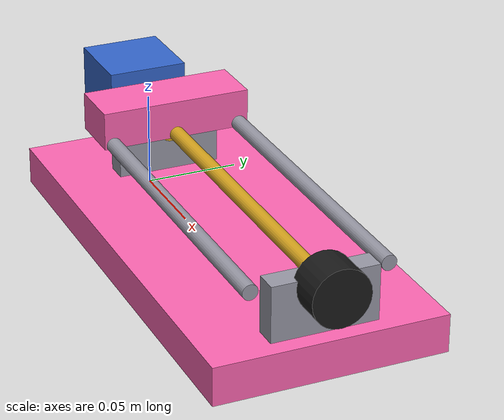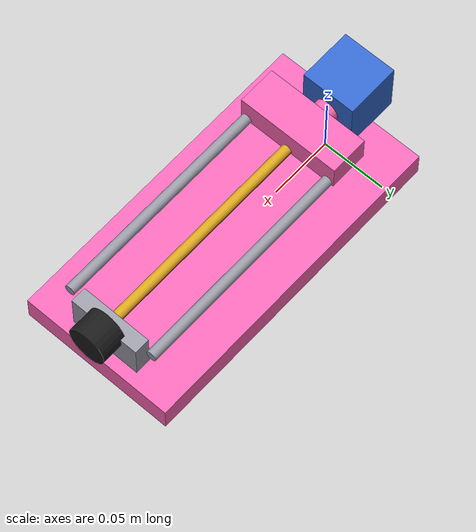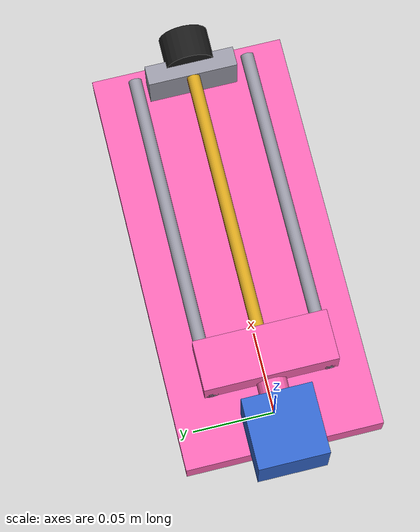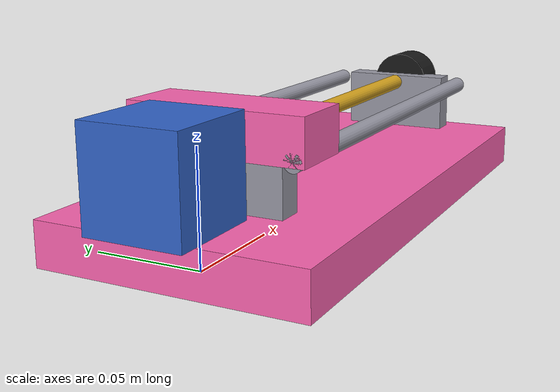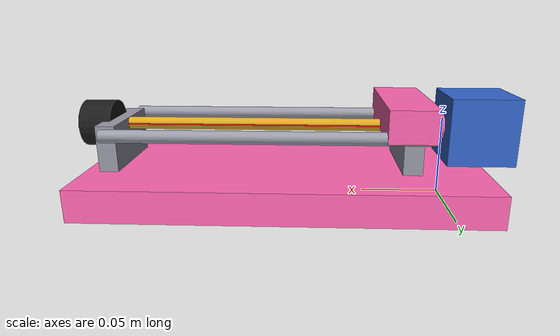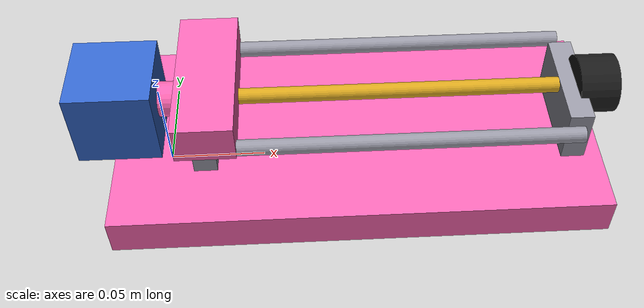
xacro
<?xml version="1.0"?>
<robot name="precision_positioning_table" xmlns:xacro="http://www.ros.org/wiki/xacro">

  <xacro:include filename="$(find precision_positioning_description)/urdf/materials.xacro" />
  <xacro:include filename="$(find precision_positioning_description)/urdf/ros2_control.xacro" />

  <!-- World link -->
  <link name="world"/>

  <joint name="world_to_base" type="fixed">
    <parent link="world"/>
    <child link="base_link"/>
    <origin xyz="0 0 0.02" rpy="0 0 0"/>
  </joint>

  <!-- Base Link (Aluminium Base Plate) -->
  <link name="base_link">
    <visual>
      <origin xyz="0.100 0 -0.01" rpy="0 0 0"/>
      <geometry>
        <box size="0.250 0.120 0.020"/>
      </geometry>
      <material name="aluminium"/>
    </visual>
    <collision>
      <origin xyz="0.100 0 -0.01" rpy="0 0 0"/>
      <geometry>
        <box size="0.250 0.120 0.020"/>
      </geometry>
    </collision>
    <inertial>
      <origin xyz="0.100 0 -0.01" rpy="0 0 0"/>
      <mass value="1.5"/>
      <inertia ixx="0.00185" ixy="0" ixz="0" iyy="0.00786" iyz="0" izz="0.00966"/>
    </inertial>
  </link>

  <!-- NEMA17 Stepper Motor Body -->
  <link name="nema17_motor">
    <visual>
      <origin xyz="-0.021 0 0" rpy="0 1.570796 0"/>
      <geometry>
        <box size="0.042 0.042 0.042"/>
      </geometry>
      <material name="stepper_blue"/>
    </visual>
    <collision>
      <origin xyz="-0.021 0 0" rpy="0 1.570796 0"/>
      <geometry>
        <box size="0.042 0.042 0.042"/>
      </geometry>
    </collision>
    <inertial>
      <origin xyz="-0.021 0 0" rpy="0 0 0"/>
      <mass value="0.35"/>
      <inertia ixx="0.0001" ixy="0" ixz="0" iyy="0.0001" iyz="0" izz="0.0001"/>
    </inertial>
  </link>

  <joint name="motor_joint" type="fixed">
    <parent link="base_link"/>
    <child link="nema17_motor"/>
    <origin xyz="0 0 0.025" rpy="0 0 0"/>
  </joint>

  <!-- Flexible Shaft Coupling -->
  <link name="shaft_coupling">
    <visual>
      <origin xyz="0.010 0 0" rpy="0 1.570796 0"/>
      <geometry>
        <cylinder radius="0.009" length="0.020"/>
      </geometry>
      <material name="aluminium"/>
    </visual>
    <collision>
      <origin xyz="0.010 0 0" rpy="0 1.570796 0"/>
      <geometry>
        <cylinder radius="0.009" length="0.020"/>
      </geometry>
    </collision>
    <inertial>
      <origin xyz="0.010 0 0" rpy="0 0 0"/>
      <mass value="0.03"/>
      <inertia ixx="0.000001" ixy="0" ixz="0" iyy="0.000001" iyz="0" izz="0.000001"/>
    </inertial>
  </link>

  <joint name="coupling_joint" type="fixed">
    <parent link="nema17_motor"/>
    <child link="shaft_coupling"/>
    <origin xyz="0 0 0" rpy="0 0 0"/>
  </joint>

  <!-- KP08 Bearing Block (Motor End) -->
  <link name="kp08_bearing_front">
    <visual>
      <origin xyz="0 0 0" rpy="0 0 0"/>
      <geometry>
        <box size="0.012 0.055 0.029"/>
      </geometry>
      <material name="steel"/>
    </visual>
    <collision>
      <origin xyz="0 0 0" rpy="0 0 0"/>
      <geometry>
        <box size="0.012 0.055 0.029"/>
      </geometry>
    </collision>
    <inertial>
      <mass value="0.08"/>
      <inertia ixx="0.00001" ixy="0" ixz="0" iyy="0.00001" iyz="0" izz="0.00001"/>
    </inertial>
  </link>

  <joint name="kp08_front_joint" type="fixed">
    <parent link="base_link"/>
    <child link="kp08_bearing_front"/>
    <origin xyz="0.022 0 0.0145" rpy="0 0 0"/>
  </joint>

  <!-- KP08 Bearing Block (Far End) -->
  <link name="kp08_bearing_rear">
    <visual>
      <origin xyz="0 0 0" rpy="0 0 0"/>
      <geometry>
        <box size="0.012 0.055 0.029"/>
      </geometry>
      <material name="steel"/>
    </visual>
    <collision>
      <origin xyz="0 0 0" rpy="0 0 0"/>
      <geometry>
        <box size="0.012 0.055 0.029"/>
      </geometry>
    </collision>
    <inertial>
      <mass value="0.08"/>
      <inertia ixx="0.00001" ixy="0" ixz="0" iyy="0.00001" iyz="0" izz="0.00001"/>
    </inertial>
  </link>

  <joint name="kp08_rear_joint" type="fixed">
    <parent link="base_link"/>
    <child link="kp08_bearing_rear"/>
    <origin xyz="0.210 0 0.0145" rpy="0 0 0"/>
  </joint>

  <!-- Two Linear Guide Rods -->
  <link name="guide_rod_1">
    <visual>
      <origin xyz="0.100 0 0" rpy="0 1.570796 0"/>
      <geometry>
        <cylinder radius="0.004" length="0.200"/>
      </geometry>
      <material name="steel"/>
    </visual>
    <collision>
      <origin xyz="0.100 0 0" rpy="0 1.570796 0"/>
      <geometry>
        <cylinder radius="0.004" length="0.200"/>
      </geometry>
    </collision>
    <inertial>
      <mass value="0.08"/>
      <inertia ixx="0.000001" ixy="0" ixz="0" iyy="0.0002" iyz="0" izz="0.0002"/>
    </inertial>
  </link>

  <joint name="guide_rod_1_joint" type="fixed">
    <parent link="base_link"/>
    <child link="guide_rod_1"/>
    <origin xyz="0.010 0.035 0.025" rpy="0 0 0"/>
  </joint>

  <link name="guide_rod_2">
    <visual>
      <origin xyz="0.100 0 0" rpy="0 1.570796 0"/>
      <geometry>
        <cylinder radius="0.004" length="0.200"/>
      </geometry>
      <material name="steel"/>
    </visual>
    <collision>
      <origin xyz="0.100 0 0" rpy="0 1.570796 0"/>
      <geometry>
        <cylinder radius="0.004" length="0.200"/>
      </geometry>
    </collision>
    <inertial>
      <mass value="0.08"/>
      <inertia ixx="0.000001" ixy="0" ixz="0" iyy="0.0002" iyz="0" izz="0.0002"/>
    </inertial>
  </link>

  <joint name="guide_rod_2_joint" type="fixed">
    <parent link="base_link"/>
    <child link="guide_rod_2"/>
    <origin xyz="0.010 -0.035 0.025" rpy="0 0 0"/>
  </joint>

  <!-- Rotary Encoder -->
  <link name="rotary_encoder">
    <visual>
      <origin xyz="0 0 0" rpy="0 1.570796 0"/>
      <geometry>
        <cylinder radius="0.015" length="0.020"/>
      </geometry>
      <material name="black"/>
    </visual>
    <collision>
      <origin xyz="0 0 0" rpy="0 1.570796 0"/>
      <geometry>
        <cylinder radius="0.015" length="0.020"/>
      </geometry>
    </collision>
    <inertial>
      <mass value="0.05"/>
      <inertia ixx="0.000005" ixy="0" ixz="0" iyy="0.000005" iyz="0" izz="0.000005"/>
    </inertial>
  </link>

  <joint name="encoder_joint" type="fixed">
    <parent link="base_link"/>
    <child link="rotary_encoder"/>
    <origin xyz="0.222 0 0.025" rpy="0 0 0"/>
  </joint>

  <!-- Lead Screw Link (Rotates) -->
  <link name="lead_screw">
    <visual>
      <origin xyz="0.100 0 0" rpy="0 1.570796 0"/>
      <geometry>
        <cylinder radius="0.004" length="0.200"/>
      </geometry>
      <material name="brass"/>
    </visual>
    <!-- Visual marker stripe on lead screw to clearly show visual rotation -->
    <visual>
      <origin xyz="0.100 0.003 0" rpy="0 1.570796 0"/>
      <geometry>
        <box size="0.001 0.002 0.198"/>
      </geometry>
      <material name="red"/>
    </visual>
    <collision>
      <origin xyz="0.100 0 0" rpy="0 1.570796 0"/>
      <geometry>
        <cylinder radius="0.004" length="0.200"/>
      </geometry>
    </collision>
    <inertial>
      <origin xyz="0.100 0 0" rpy="0 0 0"/>
      <mass value="0.10"/>
      <inertia ixx="0.000001" ixy="0" ixz="0" iyy="0.0003" iyz="0" izz="0.0003"/>
    </inertial>
  </link>

  <!-- Motor to Lead Screw Revolute Joint -->
  <joint name="lead_screw_joint" type="revolute">
    <parent link="nema17_motor"/>
    <child link="lead_screw"/>
    <origin xyz="0.010 0 0" rpy="0 0 0"/>
    <axis xyz="1 0 0"/>
    <limit lower="-1000.0" upper="1000.0" effort="2.0" velocity="100.0"/>
    <dynamics damping="0.01" friction="0.02"/>
  </joint>

  <!-- Moving Platform (Translates along X only) -->
  <link name="platform">
    <visual>
      <origin xyz="0 0 0" rpy="0 0 0"/>
      <geometry>
        <box size="0.030 0.080 0.020"/>
      </geometry>
      <material name="aluminium"/>
    </visual>
    <!-- Brass Lead Nut indicator -->
    <visual>
      <origin xyz="0 0 -0.008" rpy="0 1.570796 0"/>
      <geometry>
        <cylinder radius="0.007" length="0.016"/>
      </geometry>
      <material name="brass"/>
    </visual>
    <collision>
      <origin xyz="0 0 0" rpy="0 0 0"/>
      <geometry>
        <box size="0.030 0.080 0.020"/>
      </geometry>
    </collision>
    <inertial>
      <origin xyz="0 0 0" rpy="0 0 0"/>
      <mass value="0.25"/>
      <inertia ixx="0.00014" ixy="0" ixz="0" iyy="0.000027" iyz="0" izz="0.00015"/>
    </inertial>
  </link>

  <gazebo reference="platform">
    <visual>
      <material>
        <ambient>1.0 0.4 0.7 1.0</ambient>
        <diffuse>1.0 0.4 0.7 1.0</diffuse>
      </material>
    </visual>
  </gazebo>

  <!-- Base to Platform Prismatic Joint (Travel 0.0 to 0.18079 m) -->
  <joint name="platform_joint" type="prismatic">
    <parent link="base_link"/>
    <child link="platform"/>
    <origin xyz="0.025 0 0.033" rpy="0 0 0"/>
    <axis xyz="1 0 0"/>
    <limit lower="0.0" upper="0.18079" effort="50.0" velocity="0.1"/>
    <dynamics damping="0.1" friction="0.1"/>
  </joint>

  <!-- Gazebo ros2_control plugin setup -->
  <gazebo>
    <plugin filename="libgazebo_ros2_control.so" name="gazebo_ros2_control">
      <parameters>$(find precision_positioning_control)/config/controllers.yaml</parameters>
    </plugin>
  </gazebo>

  <gazebo reference="base_link">
    <material>Gazebo/Grey</material>
  </gazebo>
  <gazebo reference="nema17_motor">
    <material>Gazebo/Blue</material>
  </gazebo>
  <gazebo reference="lead_screw">
    <material>Gazebo/Gold</material>
  </gazebo>
  <gazebo reference="platform">
    <material>Gazebo/Grey</material>
  </gazebo>
</robot>

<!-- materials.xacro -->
<robot xmlns:xacro="http://www.ros.org/wiki/xacro">
  <material name="aluminium">
  <color rgba="1.0 0.4 0.7 1.0"/>
</material>
  <material name="black">
    <color rgba="0.1 0.1 0.1 1.0"/>
  </material>
  <material name="stepper_blue">
    <color rgba="0.2 0.4 0.8 1.0"/>
  </material>
  <material name="steel">
    <color rgba="0.6 0.6 0.65 1.0"/>
  </material>
  <material name="brass">
    <color rgba="0.85 0.65 0.12 1.0"/>
  </material>
  <material name="red">
    <color rgba="0.9 0.1 0.1 1.0"/>
  </material>
</robot>
